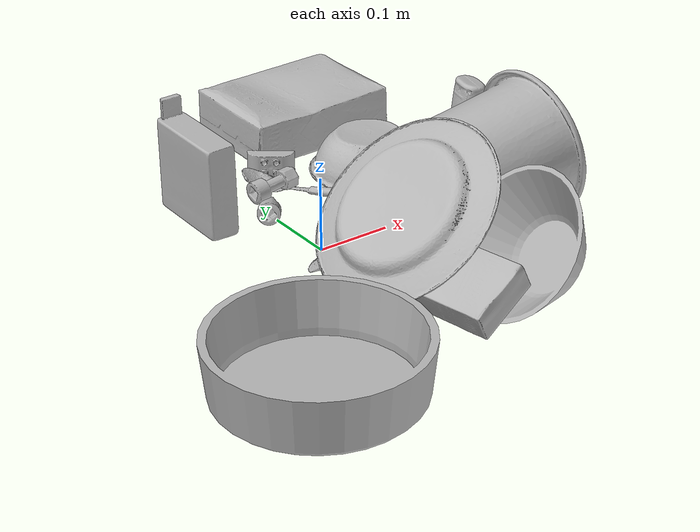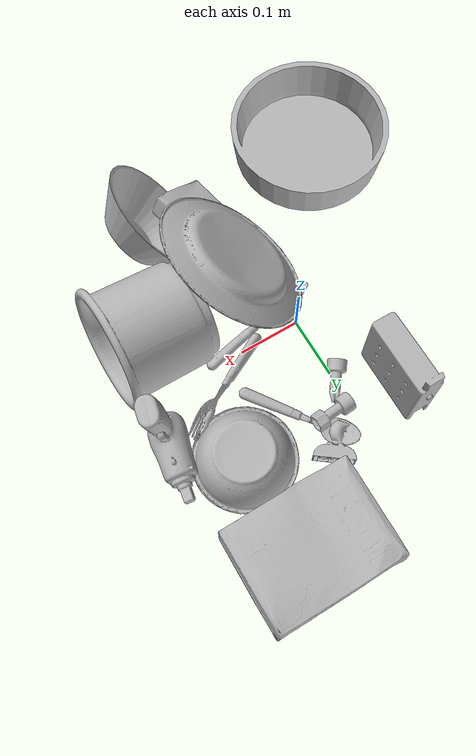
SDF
<sdf version="1.4">
  <world name="default">
    <light name="light1" type="point">
      <pose>0 0 1 0 0 0</pose>
      <diffuse>3 3 3 1</diffuse>
      <specular>3 3 3 1</specular>
    </light>
    <light name="light2" type="point">
      <pose>0 0.5 2 0 0 0</pose>
      <diffuse>1 1 1 1</diffuse>
      <specular>1 1 1 1</specular>
    </light>
    <light name="light3" type="point">
      <pose>0 0.5 2 0 0 0</pose>
      <diffuse>3 3 3 1</diffuse>
      <specular>3 3 3 1</specular>
    </light>
    <scene>
      <ambient>0.7 0.7 0.7</ambient>
    </scene>
    <model name="plate1">
      <link name="link_plate1">
        <collision name="default">
          <geometry>
            <mesh>
              <uri>model://plate/collision_meshes/collision.obj</uri>
              <scale>1.0 1.0 1.0</scale>
            </mesh>
          </geometry>
          <surface>
            <friction>
              <ode>
                <mu>0.5</mu>
                <mu2>0.5</mu2>
              </ode>
            </friction>
          <contact>
        <ode>
            <max_vel>0</max_vel>
            <min_depth>0.0001</min_depth>
            <kp>1e8</kp>
        </ode>
    </contact></surface>
        </collision>
        <visual name="default">
          <geometry>
            <mesh>
              <uri>model://plate/visual_meshes/visual.dae</uri>
              <scale>1.0 1.0 1.0</scale>
            </mesh>
          </geometry>
        </visual>
        <inertial>
          <mass>0.11001742631196976</mass>
          <pose>-0.0006044686888344586 0.000278257648460567 -0.0010561998933553696 0.00221878912528286 -0.0032254756485070152 0.4526088917028743</pose>
          <inertia>
            <ixx>0.00051466376</ixx>
            <iyy>0.0005097412</iyy>
            <izz>0.0010066056</izz>
            <ixy>0</ixy>
            <ixz>0</ixz>
            <iyz>0</iyz>
          </inertia>
        </inertial>
      </link>
      <pose>0.04387282952666283 -0.10913639515638351 0.09446263313293457 2.570509846203303 -0.47401765607718294 0.9627464481014989</pose>
    </model>
    <model name="plate2">
      <link name="link_plate2">
        <collision name="default">
          <geometry>
            <mesh>
              <uri>model://pan_tefal/collision_meshes/collision.obj</uri>
              <scale>1.0 1.0 1.0</scale>
            </mesh>
          </geometry>
          <surface>
            <friction>
              <ode>
                <mu>0.5</mu>
                <mu2>0.5</mu2>
              </ode>
            </friction>
          <contact>
        <ode>
            <max_vel>0</max_vel>
            <min_depth>0.0001</min_depth>
            <kp>1e8</kp>
        </ode>
    </contact></surface>
        </collision>
        <visual name="default">
          <geometry>
            <mesh>
              <uri>model://pan_tefal/visual_meshes/visual.dae</uri>
              <scale>1.0 1.0 1.0</scale>
            </mesh>
          </geometry>
        </visual>
        <inertial>
          <mass>1.457576870918274</mass>
          <pose>-0.00018002426077146083 3.279360316810198e-05 -0.008514936082065105 0.0008190306735146073 -0.00033013365411173643 -0.33185917339097665</pose>
          <inertia>
            <ixx>0.010061583</ixx>
            <iyy>0.01012645</iyy>
            <izz>0.01852144</izz>
            <ixy>0</ixy>
            <ixz>0</ixz>
            <iyz>0</iyz>
          </inertia>
        </inertial>
      </link>
      <pose>-0.18883495032787323 -0.26783114671707153 0.037989187985658646 0.0003182172112123217 0.00041752158004330203 -3.0108026537407913</pose>
    </model>
    <model name="bowl1">
      <link name="link_bowl1">
        <collision name="default">
          <geometry>
            <mesh>
              <uri>model://bowl_a/collision_meshes/collision.obj</uri>
              <scale>1.0 1.0 1.0</scale>
            </mesh>
          </geometry>
          <surface>
            <friction>
              <ode>
                <mu>0.5</mu>
                <mu2>0.5</mu2>
              </ode>
            </friction>
          <contact>
        <ode>
            <max_vel>0</max_vel>
            <min_depth>0.0001</min_depth>
            <kp>1e8</kp>
        </ode>
    </contact></surface>
        </collision>
        <visual name="default">
          <geometry>
            <mesh>
              <uri>model://bowl_a/visual_meshes/visual.dae</uri>
              <scale>1.0 1.0 1.0</scale>
            </mesh>
          </geometry>
        </visual>
        <inertial>
          <mass>0.29746556282043457</mass>
          <pose>0.0002786756958812475 4.7311452362919226e-05 -0.0013765294570475817 -0.0009805438325310402 -0.001093816410149737 -0.19123071729823712</pose>
          <inertia>
            <ixx>0.0008468981</ixx>
            <iyy>0.00085209764</iyy>
            <izz>0.0015062407</izz>
            <ixy>0</ixy>
            <ixz>0</ixz>
            <iyz>0</iyz>
          </inertia>
        </inertial>
      </link>
      <pose>0.1371656209230423 -0.24472394585609436 0.06349890679121017 -0.9565948838817986 0.004546277344193314 1.5083982808829004</pose>
    </model>
    <model name="bowl2">
      <link name="link_bowl2">
        <collision name="default">
          <geometry>
            <mesh>
              <uri>model://bowl/collision_meshes/collision.obj</uri>
              <scale>1.0 1.0 1.0</scale>
            </mesh>
          </geometry>
          <surface>
            <friction>
              <ode>
                <mu>0.5</mu>
                <mu2>0.5</mu2>
              </ode>
            </friction>
          <contact>
        <ode>
            <max_vel>0</max_vel>
            <min_depth>0.0001</min_depth>
            <kp>1e8</kp>
        </ode>
    </contact></surface>
        </collision>
        <visual name="default">
          <geometry>
            <mesh>
              <uri>model://bowl/visual_meshes/visual.dae</uri>
              <scale>1.0 1.0 1.0</scale>
            </mesh>
          </geometry>
        </visual>
        <inertial>
          <mass>0.12348172068595886</mass>
          <pose>0.0002044529828708619 -0.0010302055161446333 -0.0008042656118050218 -0.01576411854188812 0.014546757923928972 0.7140383762832406</pose>
          <inertia>
            <ixx>0.0002836472</ixx>
            <iyy>0.00027730947</iyy>
            <izz>0.00047719217</izz>
            <ixy>0</ixy>
            <ixz>0</ixz>
            <iyz>0</iyz>
          </inertia>
        </inertial>
      </link>
      <pose>0.18151509761810303 0.1489165723323822 0.027372214943170547 -3.128102089464111 0.003228791394886802 2.489850925684956</pose>
    </model>
    <model name="silverware1">
      <link name="link_silverware1">
        <collision name="default">
          <geometry>
            <mesh>
              <uri>model://spoon/collision_meshes/collision.obj</uri>
              <scale>1.0 1.0 1.0</scale>
            </mesh>
          </geometry>
          <surface>
            <friction>
              <ode>
                <mu>0.5</mu>
                <mu2>0.5</mu2>
              </ode>
            </friction>
          <contact>
        <ode>
            <max_vel>0</max_vel>
            <min_depth>0.0001</min_depth>
            <kp>1e8</kp>
        </ode>
    </contact></surface>
        </collision>
        <visual name="default">
          <geometry>
            <mesh>
              <uri>model://spoon/visual_meshes/visual.dae</uri>
              <scale>1.0 1.0 1.0</scale>
            </mesh>
          </geometry>
        </visual>
        <inertial>
          <mass>0.03284037858247757</mass>
          <pose>-0.005526319611817598 -0.001603417214937508 -0.000727165665011853 0.03521671059584429 -0.039065856285187314 0.0061506144474233635</pose>
          <inertia>
            <ixx>1.8266356e-06</ixx>
            <iyy>0.00012495652</iyy>
            <izz>0.00012585736</izz>
            <ixy>0</ixy>
            <ixz>0</ixz>
            <iyz>0</iyz>
          </inertia>
        </inertial>
      </link>
      <pose>0.07569067925214767 0.13334232568740845 0.00838525965809822 0.006730801100950145 0.026892992951121072 2.2080312166340192</pose>
    </model>
    <model name="box1">
      <link name="link_box1">
        <collision name="default">
          <geometry>
            <mesh>
              <uri>model://cracker_box/collision_meshes/collision.obj</uri>
              <scale>1.0 1.0 1.0</scale>
            </mesh>
          </geometry>
          <surface>
            <friction>
              <ode>
                <mu>0.5</mu>
                <mu2>0.5</mu2>
              </ode>
            </friction>
          <contact>
        <ode>
            <max_vel>0</max_vel>
            <min_depth>0.0001</min_depth>
            <kp>1e8</kp>
        </ode>
    </contact></surface>
        </collision>
        <visual name="default">
          <geometry>
            <mesh>
              <uri>model://cracker_box/visual_meshes/visual.dae</uri>
              <scale>1.0 1.0 1.0</scale>
            </mesh>
          </geometry>
        </visual>
        <inertial>
          <mass>2.434305191040039</mass>
          <pose>0.0009464126778766513 0.0002543424488976598 -0.0017029534792527556 -0.0003162073658586955 -0.011106488669321329 0.0025467952332158075</pose>
          <inertia>
            <ixx>0.0061917845</ixx>
            <iyy>0.010223853</iyy>
            <izz>0.014590379</izz>
            <ixy>0</ixy>
            <ixz>0</ixz>
            <iyz>0</iyz>
          </inertia>
        </inertial>
      </link>
      <pose>0.16610699892044067 0.3082053065299988 0.036481812596321106 -0.01178848577074309 -0.007367125543960924 0.0026617730815550575</pose>
    </model>
    <model name="box2">
      <link name="link_box2">
        <collision name="default">
          <geometry>
            <mesh>
              <uri>model://sugar_box/collision_meshes/collision.obj</uri>
              <scale>1.0 1.0 1.0</scale>
            </mesh>
          </geometry>
          <surface>
            <friction>
              <ode>
                <mu>0.5</mu>
                <mu2>0.5</mu2>
              </ode>
            </friction>
          <contact>
        <ode>
            <max_vel>0</max_vel>
            <min_depth>0.0001</min_depth>
            <kp>1e8</kp>
        </ode>
    </contact></surface>
        </collision>
        <visual name="default">
          <geometry>
            <mesh>
              <uri>model://sugar_box/visual_meshes/visual.dae</uri>
              <scale>1.0 1.0 1.0</scale>
            </mesh>
          </geometry>
        </visual>
        <inertial>
          <mass>0.5700510144233704</mass>
          <pose>0.0010343727190047503 3.849109634757042e-05 -0.00036364805418998003 -0.00040462615490547663 0.0010506634056045778 0.0026153790218534064</pose>
          <inertia>
            <ixx>0.00047496508</ixx>
            <iyy>0.0015351841</iyy>
            <izz>0.0018377992</izz>
            <ixy>0</ixy>
            <ixz>0</ixz>
            <iyz>0</iyz>
          </inertia>
        </inertial>
      </link>
      <pose>0.04461932182312012 -0.19927650690078735 0.036783523857593536 -0.4435523387489212 0.0025974845946095944 1.7756313403316166</pose>
    </model>
    <model name="cup1">
      <link name="link_cup1">
        <collision name="default">
          <geometry>
            <mesh>
              <uri>model://i_cups/collision_meshes/collision.obj</uri>
              <scale>2.0 2.0 2.0</scale>
            </mesh>
          </geometry>
          <surface>
            <friction>
              <ode>
                <mu>0.5</mu>
                <mu2>0.5</mu2>
              </ode>
            </friction>
          <contact>
        <ode>
            <max_vel>0</max_vel>
            <min_depth>0.0001</min_depth>
            <kp>1e8</kp>
        </ode>
    </contact></surface>
        </collision>
        <visual name="default">
          <geometry>
            <mesh>
              <uri>model://i_cups/visual_meshes/visual.dae</uri>
              <scale>2.0 2.0 2.0</scale>
            </mesh>
          </geometry>
        </visual>
        <inertial>
          <mass>0.8749163746833801</mass>
          <pose>0.0002248019736725837 0.0003359491820447147 -0.0017158064292743802 -0.028982988446176382 -0.03987323668700188 -0.3459135059395342</pose>
          <inertia>
            <ixx>0.0048453393</ixx>
            <iyy>0.0048880302</iyy>
            <izz>0.0054154512</izz>
            <ixy>0</ixy>
            <ixz>0</ixz>
            <iyz>0</iyz>
          </inertia>
        </inertial>
      </link>
      <pose>0.21322910487651825 -0.07143703103065491 0.08959414809942245 -0.4015727315275501 -1.4408248918744633 -2.712806572415631</pose>
    </model>
    <model name="silverware2">
      <link name="link_silverware2">
        <collision name="default">
          <geometry>
            <mesh>
              <uri>model://fork/collision_meshes/collision.obj</uri>
              <scale>1.0 1.0 1.0</scale>
            </mesh>
          </geometry>
          <surface>
            <friction>
              <ode>
                <mu>0.5</mu>
                <mu2>0.5</mu2>
              </ode>
            </friction>
          <contact>
        <ode>
            <max_vel>0</max_vel>
            <min_depth>0.0001</min_depth>
            <kp>1e8</kp>
        </ode>
    </contact></surface>
        </collision>
        <visual name="default">
          <geometry>
            <mesh>
              <uri>model://fork/visual_meshes/visual.dae</uri>
              <scale>1.0 1.0 1.0</scale>
            </mesh>
          </geometry>
        </visual>
        <inertial>
          <mass>0.021080315113067627</mass>
          <pose>-0.02957003377377987 0.00046588227269239724 0.0003218860656488687 -0.013550583544297463 -0.010977830979267335 0.014453899239778455</pose>
          <inertia>
            <ixx>7.3898417e-07</ixx>
            <iyy>5.503463e-05</iyy>
            <izz>5.5365177e-05</izz>
            <ixy>0</ixy>
            <ixz>0</ixz>
            <iyz>0</iyz>
          </inertia>
        </inertial>
      </link>
      <pose>0.15011116862297058 0.036122314631938934 0.013108489103615284 -0.7916835577985971 -0.042413050995147035 0.4853812716796191</pose>
    </model>
    <model name="silverware3">
      <link name="link_silverware3">
        <collision name="default">
          <geometry>
            <mesh>
              <uri>model://knife/collision_meshes/collision.obj</uri>
              <scale>1.0 1.0 1.0</scale>
            </mesh>
          </geometry>
          <surface>
            <friction>
              <ode>
                <mu>0.5</mu>
                <mu2>0.5</mu2>
              </ode>
            </friction>
          <contact>
        <ode>
            <max_vel>0</max_vel>
            <min_depth>0.0001</min_depth>
            <kp>1e8</kp>
        </ode>
    </contact></surface>
        </collision>
        <visual name="default">
          <geometry>
            <mesh>
              <uri>model://knife/visual_meshes/visual.dae</uri>
              <scale>1.0 1.0 1.0</scale>
            </mesh>
          </geometry>
        </visual>
        <inertial>
          <mass>0.03557601198554039</mass>
          <pose>-0.023785259574651718 0.0015275123296305537 5.062016498413868e-05 0.07305791577183936 0.01724842049726123 -0.007409813921982597</pose>
          <inertia>
            <ixx>1.0097915e-06</ixx>
            <iyy>0.00013667726</iyy>
            <izz>0.00013700248</izz>
            <ixy>0</ixy>
            <ixz>0</ixz>
            <iyz>0</iyz>
          </inertia>
        </inertial>
      </link>
      <pose>0.053699880838394165 -0.022523554041981697 0.00813679862767458 -0.28197587769288285 -0.008866620796191318 -2.9391073717589458</pose>
    </model>
    <model name="toy1">
      <link name="link_toy1">
        <collision name="default">
          <geometry>
            <mesh>
              <uri>model://b_toy_airplane/collision_meshes/collision.obj</uri>
              <scale>1.0 1.0 1.0</scale>
            </mesh>
          </geometry>
          <surface>
            <friction>
              <ode>
                <mu>0.5</mu>
                <mu2>0.5</mu2>
              </ode>
            </friction>
          <contact>
        <ode>
            <max_vel>0</max_vel>
            <min_depth>0.0001</min_depth>
            <kp>1e8</kp>
        </ode>
    </contact></surface>
        </collision>
        <visual name="default">
          <geometry>
            <mesh>
              <uri>model://b_toy_airplane/visual_meshes/visual.dae</uri>
              <scale>1.0 1.0 1.0</scale>
            </mesh>
          </geometry>
        </visual>
        <inertial>
          <mass>0.2131570726633072</mass>
          <pose>0.005081363953649998 0.00401558680459857 0.00954306498169899 -0.040018114912876775 -0.04022188568687408 -0.5601502887595425</pose>
          <inertia>
            <ixx>0.00039573</ixx>
            <iyy>0.00015817716</iyy>
            <izz>0.00049232744</izz>
            <ixy>0</ixy>
            <ixz>0</ixz>
            <iyz>0</iyz>
          </inertia>
        </inertial>
      </link>
      <pose>0.2779023349285126 0.07010558992624283 0.052477724850177765 -1.3676028291992386 0.0017284850578236813 1.358069491029658</pose>
    </model>
    <model name="toy2">
      <link name="link_toy2">
        <collision name="default">
          <geometry>
            <mesh>
              <uri>model://nine_hole_peg_test/collision_meshes/collision.obj</uri>
              <scale>1.0 1.0 1.0</scale>
            </mesh>
          </geometry>
          <surface>
            <friction>
              <ode>
                <mu>0.5</mu>
                <mu2>0.5</mu2>
              </ode>
            </friction>
          <contact>
        <ode>
            <max_vel>0</max_vel>
            <min_depth>0.0001</min_depth>
            <kp>1e8</kp>
        </ode>
    </contact></surface>
        </collision>
        <visual name="default">
          <geometry>
            <mesh>
              <uri>model://nine_hole_peg_test/visual_meshes/visual.dae</uri>
              <scale>1.0 1.0 1.0</scale>
            </mesh>
          </geometry>
        </visual>
        <inertial>
          <mass>0.9403080940246582</mass>
          <pose>-0.004617387894541025 -0.009647617116570473 2.646069333422929e-05 -0.0014666798116952742 0.0007194174694617774 -0.6342424398534297</pose>
          <inertia>
            <ixx>0.0014703267</ixx>
            <iyy>0.0013728285</iyy>
            <izz>0.0025764457</izz>
            <ixy>0</ixy>
            <ixz>0</ixz>
            <iyz>0</iyz>
          </inertia>
        </inertial>
      </link>
      <pose>-0.08019278943538666 0.16465553641319275 0.07401780784130096 1.5586828140399431 -0.007560111035731202 1.5715295646741323</pose>
    </model>
    <model name="toy3">
      <link name="link_toy3">
        <collision name="default">
          <geometry>
            <mesh>
              <uri>model://a_lego_duplo/collision_meshes/collision.obj</uri>
              <scale>1.0 1.0 1.0</scale>
            </mesh>
          </geometry>
          <surface>
            <friction>
              <ode>
                <mu>0.5</mu>
                <mu2>0.5</mu2>
              </ode>
            </friction>
          <contact>
        <ode>
            <max_vel>0</max_vel>
            <min_depth>0.0001</min_depth>
            <kp>1e8</kp>
        </ode>
    </contact></surface>
        </collision>
        <visual name="default">
          <geometry>
            <mesh>
              <uri>model://a_lego_duplo/visual_meshes/visual.dae</uri>
              <scale>1.0 1.0 1.0</scale>
            </mesh>
          </geometry>
        </visual>
        <inertial>
          <mass>0.023130550980567932</mass>
          <pose>-0.00011337705655023456 0.00018517566786613315 0.00036926098982803524 -0.014116995996849858 -0.00012565876120078728 6.143831699070756e-05</pose>
          <inertia>
            <ixx>2.9655212e-06</ixx>
            <iyy>6.643419e-06</iyy>
            <izz>8.229349e-06</izz>
            <ixy>0</ixy>
            <ixz>0</ixz>
            <iyz>0</iyz>
          </inertia>
        </inertial>
      </link>
      <pose>0.06397494673728943 0.210447296500206 0.01624572090804577 -1.5708322945995736 4.3508825999556985e-05 2.50657269632706</pose>
    </model>
    <model name="toy4">
      <link name="link_toy4">
        <collision name="default">
          <geometry>
            <mesh>
              <uri>model://c_toy_airplane/collision_meshes/collision.obj</uri>
              <scale>1.0 1.0 1.0</scale>
            </mesh>
          </geometry>
          <surface>
            <friction>
              <ode>
                <mu>0.5</mu>
                <mu2>0.5</mu2>
              </ode>
            </friction>
          <contact>
        <ode>
            <max_vel>0</max_vel>
            <min_depth>0.0001</min_depth>
            <kp>1e8</kp>
        </ode>
    </contact></surface>
        </collision>
        <visual name="default">
          <geometry>
            <mesh>
              <uri>model://c_toy_airplane/visual_meshes/visual.dae</uri>
              <scale>1.0 1.0 1.0</scale>
            </mesh>
          </geometry>
        </visual>
        <inertial>
          <mass>0.016945533454418182</mass>
          <pose>-0.00023024251277092844 -4.426267139479023e-07 -0.006080526392906904 -0.00619248279943298 -0.01679780513617648 0.7654772671109313</pose>
          <inertia>
            <ixx>7.781044e-06</ixx>
            <iyy>7.759084e-06</iyy>
            <izz>1.826835e-06</izz>
            <ixy>0</ixy>
            <ixz>0</ixz>
            <iyz>0</iyz>
          </inertia>
        </inertial>
      </link>
      <pose>0.032886505126953125 0.15755757689476013 0.017250798642635345 -1.4328076063817239 1.0760822386948663 -1.3625852887657544</pose>
    </model>
    <model name="toy5">
      <link name="link_toy5">
        <collision name="default">
          <geometry>
            <mesh>
              <uri>model://d_toy_airplane/collision_meshes/collision.obj</uri>
              <scale>1.0 1.0 1.0</scale>
            </mesh>
          </geometry>
          <surface>
            <friction>
              <ode>
                <mu>0.5</mu>
                <mu2>0.5</mu2>
              </ode>
            </friction>
          <contact>
        <ode>
            <max_vel>0</max_vel>
            <min_depth>0.0001</min_depth>
            <kp>1e8</kp>
        </ode>
    </contact></surface>
        </collision>
        <visual name="default">
          <geometry>
            <mesh>
              <uri>model://d_toy_airplane/visual_meshes/visual.dae</uri>
              <scale>1.0 1.0 1.0</scale>
            </mesh>
          </geometry>
        </visual>
        <inertial>
          <mass>0.01782749593257904</mass>
          <pose>9.410309576196596e-05 -5.809334834339097e-05 -0.011728094890713692 0.00026697885790152897 0.00467897817044427 0.5194648744438854</pose>
          <inertia>
            <ixx>5.3443378e-06</ixx>
            <iyy>5.3483677e-06</iyy>
            <izz>1.6134899e-06</izz>
            <ixy>0</ixy>
            <ixz>0</ixz>
            <iyz>0</iyz>
          </inertia>
        </inertial>
      </link>
      <pose>0.0011709248647093773 0.11671845614910126 0.011753578670322895 1.7935881094131367 0.49230685710785077 2.6071488139837875</pose>
    </model>
  <physics type="ode">
      <max_contacts>50</max_contacts>
      <ode>
        <solver>
          <type>quick</type>
          <iters>75</iters>
        </solver>
        <constraints>
          <contact_max_correcting_vel>0</contact_max_correcting_vel>
          <contact_surface_layer>0</contact_surface_layer>
        </constraints>
      </ode>
    </physics></world>
</sdf>
